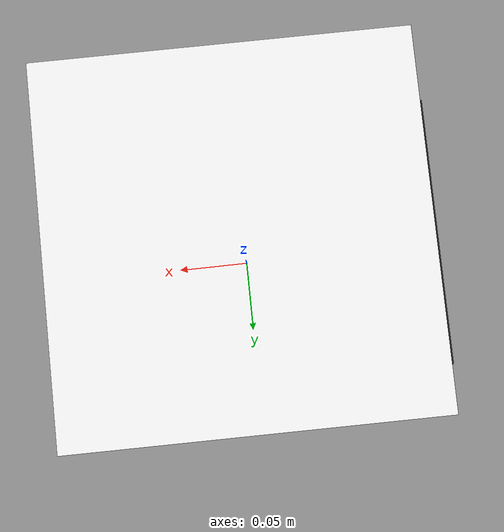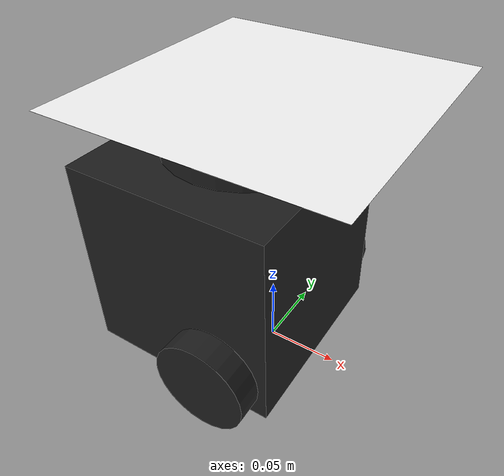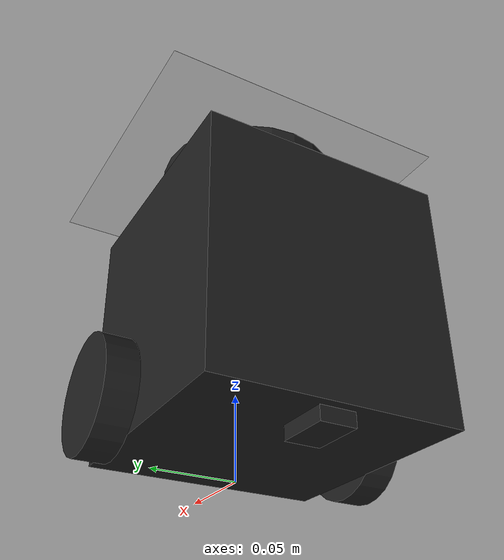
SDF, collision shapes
<?xml version='1.0'?>
<sdf version='1.6'>
  <model name='model2'>
    <link name='base_footprint'>
      <pose frame=''>0 0 0 -0 -0 -0</pose>
      <inertial>
        <pose frame=''>-0.00429 0 0.030734 0 -0 0</pose>
        <mass>0.944735</mass>
        <inertia>
          <ixx>0.00717896</ixx>
          <ixy>0</ixy>
          <ixz>0.00057674</ixz>
          <iyy>0.00721804</iyy>
          <iyz>0</iyz>
          <izz>0.00413858</izz>
        </inertia>
      </inertial>
      <velocity_decay/>
      <velocity_decay/>
      <velocity_decay/>
      <sensor name='imu' type='imu'>
        <always_on>1</always_on>
        <visualize>0</visualize>
        <pose frame=''>-0.032 0 0.078 0 -0 0</pose>
        <imu/>
      </sensor>
      <gravity>1</gravity>
      <velocity_decay/>
      <sensor name='lds_lfcd_sensor' type='ray'>
        <visualize>0</visualize>
        <update_rate>5</update_rate>
        <ray>
          <scan>
            <horizontal>
              <samples>360</samples>
              <resolution>1</resolution>
              <min_angle>0</min_angle>
              <max_angle>6.28319</max_angle>
            </horizontal>
            <vertical>
              <samples>1</samples>
              <min_angle>0</min_angle>
              <max_angle>0</max_angle>
            </vertical>
          </scan>
          <range>
            <min>0.12</min>
            <max>3.5</max>
            <resolution>0.015</resolution>
          </range>
          <noise>
            <type>gaussian</type>
            <mean>0</mean>
            <stddev>0.01</stddev>
          </noise>
        </ray>
        <plugin name='gazebo_ros_lds_lfcd_controller' filename='libgazebo_ros_laser.so'>
          <topicName>scan</topicName>
          <frameName>base_scan</frameName>
          <robotNamespace>/</robotNamespace>
        </plugin>
        <pose frame=''>-0.032 0 0.182 0 -0 0</pose>
      </sensor>
      <self_collide>0</self_collide>
      <enable_wind>0</enable_wind>
      <kinematic>0</kinematic>
      <visual name='ModelPreview_1::base_footprint::visual_2'>
        <pose frame=''>0 0 0.195 0 -0 0</pose>
        <geometry>
          <box>
            <size>0.18 0.18 0.001</size>
          </box>
        </geometry>
        <material>
          <script>
            <name>Gazebo/FlatBlack</name>
            <uri>file://media/materials/scripts/gazebo.material</uri>
          </script>
          <shader type='vertex'>
            <normal_map>__default__</normal_map>
          </shader>
          <ambient>0 0 0.098 1</ambient>
          <diffuse>0 0 0 1</diffuse>
          <specular>0 0 0 1</specular>
          <emissive>0 0 0 1</emissive>
        </material>
        <transparency>0</transparency>
        <cast_shadows>1</cast_shadows>
      </visual>
      <visual name='base_footprint_fixed_joint_lump__base_link_visual'>
        <pose frame=''>-0.032 0 0.01 0 -0 0</pose>
        <geometry>
          <mesh>
            <scale>0.001 0.001 0.001</scale>
            <uri>/home/mscv_gr1/catkin_ws/src/turtlebot3_vibot/turtlebot3_description/meshes/bases/burger_base.stl</uri>
          </mesh>
        </geometry>
        <material>
          <script>
            <name>Gazebo/DarkGrey</name>
            <uri>file://media/materials/scripts/gazebo.material</uri>
          </script>
          <shader type='vertex'>
            <normal_map>__default__</normal_map>
          </shader>
          <ambient>0.175 0.175 0.175 1</ambient>
          <diffuse>0.175 0.175 0.175 1</diffuse>
          <specular>0.175 0.175 0.175 1</specular>
          <emissive>0 0 0 1</emissive>
        </material>
        <transparency>0</transparency>
        <cast_shadows>1</cast_shadows>
      </visual>
      <visual name='ModelPreview_1::base_footprint::visual_5'>
        <pose frame=''>0.045 0 0.197 0 -0 0</pose>
        <geometry>
          <box>
            <size>0.03 0.12 0.001</size>
          </box>
        </geometry>
        <material>
          <script>
            <name>Gazebo/FlatBlack</name>
            <uri>file://media/materials/scripts/gazebo.material</uri>
          </script>
          <shader type='vertex'>
            <normal_map>__default__</normal_map>
          </shader>
          <ambient>1 1 1 1</ambient>
          <diffuse>1 1 1 1</diffuse>
          <specular>1 1 1 1</specular>
          <emissive>1 1 1 1</emissive>
        </material>
        <transparency>0</transparency>
        <cast_shadows>1</cast_shadows>
      </visual>
      <visual name='base_footprint_fixed_joint_lump__base_scan_visual_1'>
        <pose frame=''>-0.032 0 0.182 0 -0 0</pose>
        <geometry>
          <mesh>
            <scale>0.001 0.001 0.001</scale>
            <uri>/home/mscv_gr1/catkin_ws/src/turtlebot3_vibot/turtlebot3_description/meshes/sensors/lds.stl</uri>
          </mesh>
        </geometry>
        <material>
          <script>
            <name>Gazebo/FlatBlack</name>
            <uri>file://media/materials/scripts/gazebo.material</uri>
          </script>
          <shader type='vertex'>
            <normal_map>__default__</normal_map>
          </shader>
          <ambient>0.1 0.1 0.1 1</ambient>
          <diffuse>0.1 0.1 0.1 1</diffuse>
          <specular>0.01 0.01 0.01 1</specular>
          <emissive>0 0 0 1</emissive>
        </material>
        <transparency>0</transparency>
        <cast_shadows>1</cast_shadows>
      </visual>
      <collision name='base_footprint_fixed_joint_lump__base_link_collision'>
        <laser_retro>0</laser_retro>
        <max_contacts>10</max_contacts>
        <pose frame=''>-0.032 0 0.08 0 -0 0</pose>
        <geometry>
          <box>
            <size>0.14 0.14 0.143</size>
          </box>
        </geometry>
        <surface>
          <friction>
            <ode>
              <mu>1</mu>
              <mu2>1</mu2>
              <fdir1>0 0 0</fdir1>
              <slip1>0</slip1>
              <slip2>0</slip2>
            </ode>
            <torsional>
              <coefficient>1</coefficient>
              <patch_radius>0</patch_radius>
              <surface_radius>0</surface_radius>
              <use_patch_radius>1</use_patch_radius>
              <ode>
                <slip>0</slip>
              </ode>
            </torsional>
          </friction>
          <bounce>
            <restitution_coefficient>0</restitution_coefficient>
            <threshold>1e+06</threshold>
          </bounce>
          <contact>
            <collide_without_contact>0</collide_without_contact>
            <collide_without_contact_bitmask>1</collide_without_contact_bitmask>
            <collide_bitmask>1</collide_bitmask>
            <ode>
              <soft_cfm>0</soft_cfm>
              <soft_erp>0.2</soft_erp>
              <kp>1e+13</kp>
              <kd>1</kd>
              <max_vel>0.01</max_vel>
              <min_depth>0</min_depth>
            </ode>
            <bullet>
              <split_impulse>1</split_impulse>
              <split_impulse_penetration_threshold>-0.01</split_impulse_penetration_threshold>
              <soft_cfm>0</soft_cfm>
              <soft_erp>0.2</soft_erp>
              <kp>1e+13</kp>
              <kd>1</kd>
            </bullet>
          </contact>
        </surface>
      </collision>
      <collision name='base_footprint_fixed_joint_lump__base_scan_collision_2'>
        <laser_retro>0</laser_retro>
        <max_contacts>10</max_contacts>
        <pose frame=''>-0.017 0 0.1755 0 -0 0</pose>
        <geometry>
          <cylinder>
            <radius>0.055</radius>
            <length>0.0315</length>
          </cylinder>
        </geometry>
        <surface>
          <friction>
            <ode>
              <mu>1</mu>
              <mu2>1</mu2>
              <fdir1>0 0 0</fdir1>
              <slip1>0</slip1>
              <slip2>0</slip2>
            </ode>
            <torsional>
              <coefficient>1</coefficient>
              <patch_radius>0</patch_radius>
              <surface_radius>0</surface_radius>
              <use_patch_radius>1</use_patch_radius>
              <ode>
                <slip>0</slip>
              </ode>
            </torsional>
          </friction>
          <bounce>
            <restitution_coefficient>0</restitution_coefficient>
            <threshold>1e+06</threshold>
          </bounce>
          <contact>
            <collide_without_contact>0</collide_without_contact>
            <collide_without_contact_bitmask>1</collide_without_contact_bitmask>
            <collide_bitmask>1</collide_bitmask>
            <ode>
              <soft_cfm>0</soft_cfm>
              <soft_erp>0.2</soft_erp>
              <kp>1e+13</kp>
              <kd>1</kd>
              <max_vel>0.01</max_vel>
              <min_depth>0</min_depth>
            </ode>
            <bullet>
              <split_impulse>1</split_impulse>
              <split_impulse_penetration_threshold>-0.01</split_impulse_penetration_threshold>
              <soft_cfm>0</soft_cfm>
              <soft_erp>0.2</soft_erp>
              <kp>1e+13</kp>
              <kd>1</kd>
            </bullet>
          </contact>
        </surface>
      </collision>
      <collision name='base_footprint_fixed_joint_lump__caster_back_link_collision_1'>
        <laser_retro>0</laser_retro>
        <max_contacts>10</max_contacts>
        <pose frame=''>-0.081 1e-06 0.005 -1.57 0 0</pose>
        <geometry>
          <box>
            <size>0.03 0.009 0.02</size>
          </box>
        </geometry>
        <surface>
          <friction>
            <ode>
              <mu>0.1</mu>
              <mu2>0.1</mu2>
              <fdir1>0 0 0</fdir1>
              <slip1>0</slip1>
              <slip2>0</slip2>
            </ode>
            <torsional>
              <coefficient>1</coefficient>
              <patch_radius>0</patch_radius>
              <surface_radius>0</surface_radius>
              <use_patch_radius>1</use_patch_radius>
              <ode>
                <slip>0</slip>
              </ode>
            </torsional>
          </friction>
          <bounce>
            <restitution_coefficient>0</restitution_coefficient>
            <threshold>1e+06</threshold>
          </bounce>
          <contact>
            <collide_without_contact>0</collide_without_contact>
            <collide_without_contact_bitmask>1</collide_without_contact_bitmask>
            <collide_bitmask>1</collide_bitmask>
            <ode>
              <soft_cfm>0</soft_cfm>
              <soft_erp>0.2</soft_erp>
              <kp>1e+06</kp>
              <kd>100</kd>
              <max_vel>1</max_vel>
              <min_depth>0.001</min_depth>
            </ode>
            <bullet>
              <split_impulse>1</split_impulse>
              <split_impulse_penetration_threshold>-0.01</split_impulse_penetration_threshold>
              <soft_cfm>0</soft_cfm>
              <soft_erp>0.2</soft_erp>
              <kp>1e+06</kp>
              <kd>100</kd>
            </bullet>
          </contact>
        </surface>
      </collision>
    </link>
    <link name='wheel_left_link'>
      <pose frame=''>-0 0.08 0.033 -1.57 -0 0</pose>
      <inertial>
        <pose frame=''>0 0 0 0 -0 0</pose>
        <mass>0.0284989</mass>
        <inertia>
          <ixx>1.11756e-05</ixx>
          <ixy>-4.23698e-11</ixy>
          <ixz>-5.93817e-09</ixz>
          <iyy>1.11924e-05</iyy>
          <iyz>-1.44001e-11</iyz>
          <izz>2.07126e-05</izz>
        </inertia>
      </inertial>
      <gravity>1</gravity>
      <velocity_decay/>
      <self_collide>0</self_collide>
      <enable_wind>0</enable_wind>
      <kinematic>0</kinematic>
      <visual name='wheel_left_link_visual'>
        <pose frame=''>0 0 0 1.57 -0 0</pose>
        <geometry>
          <mesh>
            <scale>0.001 0.001 0.001</scale>
            <uri>/home/mscv_gr1/catkin_ws/src/turtlebot3_vibot/turtlebot3_description/meshes/wheels/left_tire.stl</uri>
          </mesh>
        </geometry>
        <material>
          <script>
            <name>Gazebo/FlatBlack</name>
            <uri>file://media/materials/scripts/gazebo.material</uri>
          </script>
        </material>
        <transparency>0</transparency>
        <cast_shadows>1</cast_shadows>
      </visual>
      <collision name='wheel_left_link_collision'>
        <laser_retro>0</laser_retro>
        <max_contacts>10</max_contacts>
        <pose frame=''>0 0 0 0 -0 0</pose>
        <geometry>
          <cylinder>
            <radius>0.033</radius>
            <length>0.018</length>
          </cylinder>
        </geometry>
        <surface>
          <friction>
            <ode>
              <mu>0.1</mu>
              <mu2>0.1</mu2>
              <fdir1>1 0 0</fdir1>
              <slip1>0</slip1>
              <slip2>0</slip2>
            </ode>
            <torsional>
              <coefficient>1</coefficient>
              <patch_radius>0</patch_radius>
              <surface_radius>0</surface_radius>
              <use_patch_radius>1</use_patch_radius>
              <ode>
                <slip>0</slip>
              </ode>
            </torsional>
          </friction>
          <bounce>
            <restitution_coefficient>0</restitution_coefficient>
            <threshold>1e+06</threshold>
          </bounce>
          <contact>
            <collide_without_contact>0</collide_without_contact>
            <collide_without_contact_bitmask>1</collide_without_contact_bitmask>
            <collide_bitmask>1</collide_bitmask>
            <ode>
              <soft_cfm>0</soft_cfm>
              <soft_erp>0.2</soft_erp>
              <kp>500000</kp>
              <kd>10</kd>
              <max_vel>0.1</max_vel>
              <min_depth>0.001</min_depth>
            </ode>
            <bullet>
              <split_impulse>1</split_impulse>
              <split_impulse_penetration_threshold>-0.01</split_impulse_penetration_threshold>
              <soft_cfm>0</soft_cfm>
              <soft_erp>0.2</soft_erp>
              <kp>500000</kp>
              <kd>10</kd>
            </bullet>
          </contact>
        </surface>
      </collision>
    </link>
    <link name='wheel_right_link'>
      <pose frame=''>0 -0.08 0.033 -1.57 -0 0</pose>
      <inertial>
        <pose frame=''>0 0 0 0 -0 0</pose>
        <mass>0.0284989</mass>
        <inertia>
          <ixx>1.11756e-05</ixx>
          <ixy>-4.23698e-11</ixy>
          <ixz>-5.93817e-09</ixz>
          <iyy>1.11924e-05</iyy>
          <iyz>-1.44001e-11</iyz>
          <izz>2.07126e-05</izz>
        </inertia>
      </inertial>
      <gravity>1</gravity>
      <velocity_decay/>
      <self_collide>0</self_collide>
      <enable_wind>0</enable_wind>
      <kinematic>0</kinematic>
      <visual name='wheel_right_link_visual'>
        <pose frame=''>0 0 0 1.57 -0 0</pose>
        <geometry>
          <mesh>
            <scale>0.001 0.001 0.001</scale>
            <uri>/home/mscv_gr1/catkin_ws/src/turtlebot3_vibot/turtlebot3_description/meshes/wheels/right_tire.stl</uri>
          </mesh>
        </geometry>
        <material>
          <script>
            <name>Gazebo/FlatBlack</name>
            <uri>file://media/materials/scripts/gazebo.material</uri>
          </script>
        </material>
        <transparency>0</transparency>
        <cast_shadows>1</cast_shadows>
      </visual>
      <collision name='wheel_right_link_collision'>
        <laser_retro>0</laser_retro>
        <max_contacts>10</max_contacts>
        <pose frame=''>0 0 0 0 -0 0</pose>
        <geometry>
          <cylinder>
            <radius>0.033</radius>
            <length>0.018</length>
          </cylinder>
        </geometry>
        <surface>
          <friction>
            <ode>
              <mu>0.1</mu>
              <mu2>0.1</mu2>
              <fdir1>1 0 0</fdir1>
              <slip1>0</slip1>
              <slip2>0</slip2>
            </ode>
            <torsional>
              <coefficient>1</coefficient>
              <patch_radius>0</patch_radius>
              <surface_radius>0</surface_radius>
              <use_patch_radius>1</use_patch_radius>
              <ode>
                <slip>0</slip>
              </ode>
            </torsional>
          </friction>
          <bounce>
            <restitution_coefficient>0</restitution_coefficient>
            <threshold>1e+06</threshold>
          </bounce>
          <contact>
            <collide_without_contact>0</collide_without_contact>
            <collide_without_contact_bitmask>1</collide_without_contact_bitmask>
            <collide_bitmask>1</collide_bitmask>
            <ode>
              <soft_cfm>0</soft_cfm>
              <soft_erp>0.2</soft_erp>
              <kp>500000</kp>
              <kd>10</kd>
              <max_vel>0.1</max_vel>
              <min_depth>0.001</min_depth>
            </ode>
            <bullet>
              <split_impulse>1</split_impulse>
              <split_impulse_penetration_threshold>-0.01</split_impulse_penetration_threshold>
              <soft_cfm>0</soft_cfm>
              <soft_erp>0.2</soft_erp>
              <kp>500000</kp>
              <kd>10</kd>
            </bullet>
          </contact>
        </surface>
      </collision>
    </link>
    <model name='aruco_visual_marker_6'>
      <link name='marker'>
        <pose frame=''>0 0 0 0 -0 0</pose>
        <visual name='visual'>
          <geometry>
            <box>
              <size>0.1778 0.1778 1e-05</size>
            </box>
          </geometry>
          <material>
            <script>
              <uri>model://aruco_visual_marker_6/materials/scripts</uri>
              <uri>model://aruco_visual_marker_6/materials/textures</uri>
              <name>ArucoVisualMarker6/Marker</name>
            </script>
            <ambient>1 1 1 1</ambient>
            <diffuse>1 1 1 1</diffuse>
            <specular>0 0 0 1</specular>
            <emissive>1 1 1 0</emissive>
            <shader type='vertex'>
              <normal_map>__default__</normal_map>
            </shader>
          </material>
          <pose frame=''>0 0 0 0 -0 0</pose>
          <cast_shadows>1</cast_shadows>
          <transparency>0</transparency>
        </visual>
        <collision name='collision'>
          <laser_retro>0</laser_retro>
          <max_contacts>10</max_contacts>
          <pose frame=''>0 0 0 0 -0 0</pose>
          <geometry>
            <box>
              <size>0.1778 0.1778 1e-05</size>
            </box>
          </geometry>
        </collision>
      </link>
      <link name='marker_pad'>
        <pose frame='marker'>0 0 -1e-05 0 -0 0</pose>
        <visual name='visual'>
          <geometry>
            <box>
              <size>0.1778 0.1778 1e-05</size>
            </box>
          </geometry>
          <material>
            <lighting>1</lighting>
            <script>
              <uri>file://media/materials/scripts/gazebo.material</uri>
              <name>Gazebo/White</name>
            </script>
            <ambient>0.3 0.3 0.3 1</ambient>
            <diffuse>0.7 0.7 0.7 1</diffuse>
            <specular>0.01 0.01 0.01 1</specular>
            <emissive>1 1 1 0</emissive>
            <shader type='vertex'>
              <normal_map>__default__</normal_map>
            </shader>
          </material>
          <cast_shadows>1</cast_shadows>
          <transparency>0</transparency>
        </visual>
        <collision name='collision'>
          <laser_retro>0</laser_retro>
          <max_contacts>10</max_contacts>
          <pose frame=''>0 0 0 0 -0 0</pose>
          <geometry>
            <box>
              <size>0.1778 0.1778 1e-05</size>
            </box>
          </geometry>
        </collision>
      </link>
      <joint name='marker_JOINT_marker_pad' type='revolute'>
        <parent>marker</parent>
        <child>marker_pad</child>
        <pose frame=''>0 0 0 0 -0 0</pose>
        <axis>
          <xyz>0 0 1</xyz>
          <limit>
            <upper>0</upper>
            <lower>0</lower>
          </limit>
          <use_parent_model_frame>0</use_parent_model_frame>
        </axis>
      </joint>
      <static>1</static>
      <allow_auto_disable>1</allow_auto_disable>
      <pose frame=''>0.001749 -0.003256 0.200462 -0 -0 -0</pose>
    </model>
    <joint name='wheel_left_joint' type='revolute'>
      <parent>base_footprint</parent>
      <child>wheel_left_link</child>
      <pose frame=''>0 0 0 0 -0 0</pose>
      <axis>
        <xyz>0 1 0.000796</xyz>
        <use_parent_model_frame>1</use_parent_model_frame>
        <limit>
          <lower>-1e+16</lower>
          <upper>1e+16</upper>
          <effort>-1</effort>
          <velocity>-1</velocity>
        </limit>
        <dynamics>
          <spring_reference>0</spring_reference>
          <spring_stiffness>0</spring_stiffness>
          <damping>0</damping>
          <friction>0</friction>
        </dynamics>
      </axis>
      <physics>
        <ode>
          <limit>
            <cfm>0</cfm>
            <erp>0.2</erp>
          </limit>
          <suspension>
            <cfm>0</cfm>
            <erp>0.2</erp>
          </suspension>
        </ode>
      </physics>
    </joint>
    <joint name='wheel_right_joint' type='revolute'>
      <parent>base_footprint</parent>
      <child>wheel_right_link</child>
      <pose frame=''>0 0 0 0 -0 0</pose>
      <axis>
        <xyz>0 1 0.000796</xyz>
        <use_parent_model_frame>1</use_parent_model_frame>
        <limit>
          <lower>-1e+16</lower>
          <upper>1e+16</upper>
          <effort>-1</effort>
          <velocity>-1</velocity>
        </limit>
        <dynamics>
          <spring_reference>0</spring_reference>
          <spring_stiffness>0</spring_stiffness>
          <damping>0</damping>
          <friction>0</friction>
        </dynamics>
      </axis>
      <physics>
        <ode>
          <limit>
            <cfm>0</cfm>
            <erp>0.2</erp>
          </limit>
          <suspension>
            <cfm>0</cfm>
            <erp>0.2</erp>
          </suspension>
        </ode>
      </physics>
    </joint>
    <static>0</static>
    <allow_auto_disable>1</allow_auto_disable>
    <plugin name='imu_plugin' filename='libgazebo_ros_imu.so'>
      <alwaysOn>1</alwaysOn>
      <topicName>imu</topicName>
      <serviceName>imu_service</serviceName>
      <gaussianNoise>0.0</gaussianNoise>
      <updateRate>0</updateRate>
      <imu>
        <noise>
          <type>gaussian</type>
          <rate>
            <mean>0.0</mean>
            <stddev>2e-4</stddev>
            <bias_mean>0.0000075</bias_mean>
            <bias_stddev>0.0000008</bias_stddev>
          </rate>
          <accel>
            <mean>0.0</mean>
            <stddev>1.7e-2</stddev>
            <bias_mean>0.1</bias_mean>
            <bias_stddev>0.001</bias_stddev>
          </accel>
        </noise>
      </imu>
      <robotNamespace>/</robotNamespace>
      <bodyName>base_footprint</bodyName>
      <frameName>base_footprint</frameName>
      <xyzOffset>0.064 0 -0.156</xyzOffset>
      <rpyOffset>0 -0 0</rpyOffset>
    </plugin>
    <plugin name='turtlebot3_burger_controller' filename='libgazebo_ros_diff_drive.so'>
      <commandTopic>cmd_vel</commandTopic>
      <odometryTopic>odom</odometryTopic>
      <odometryFrame>odom</odometryFrame>
      <odometrySource>world</odometrySource>
      <publishOdomTF>1</publishOdomTF>
      <robotBaseFrame>base_footprint</robotBaseFrame>
      <publishWheelTF>0</publishWheelTF>
      <publishTf>1</publishTf>
      <publishWheelJointState>1</publishWheelJointState>
      <legacyMode>0</legacyMode>
      <updateRate>30</updateRate>
      <leftJoint>wheel_left_joint</leftJoint>
      <rightJoint>wheel_right_joint</rightJoint>
      <wheelSeparation>0.160</wheelSeparation>
      <wheelDiameter>0.066</wheelDiameter>
      <wheelAcceleration>1</wheelAcceleration>
      <wheelTorque>10</wheelTorque>
      <rosDebugLevel>na</rosDebugLevel>
      <robotNamespace>/</robotNamespace>
    </plugin>
  </model>
</sdf>
